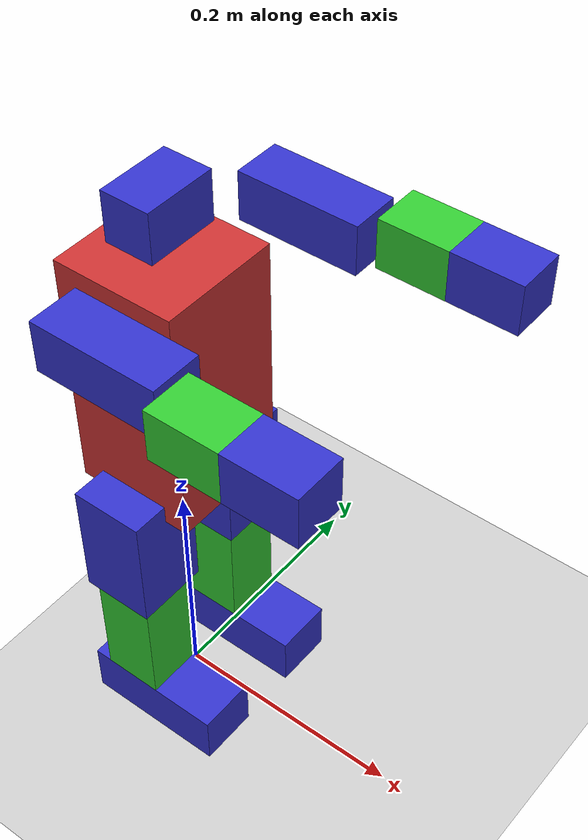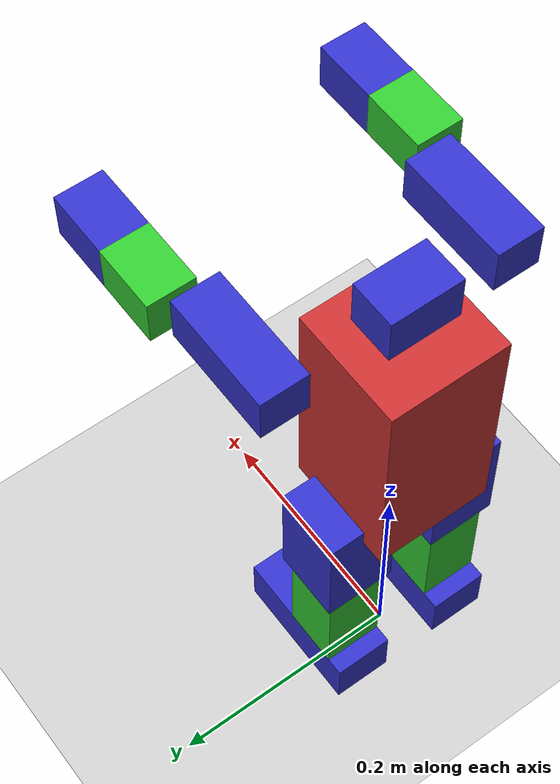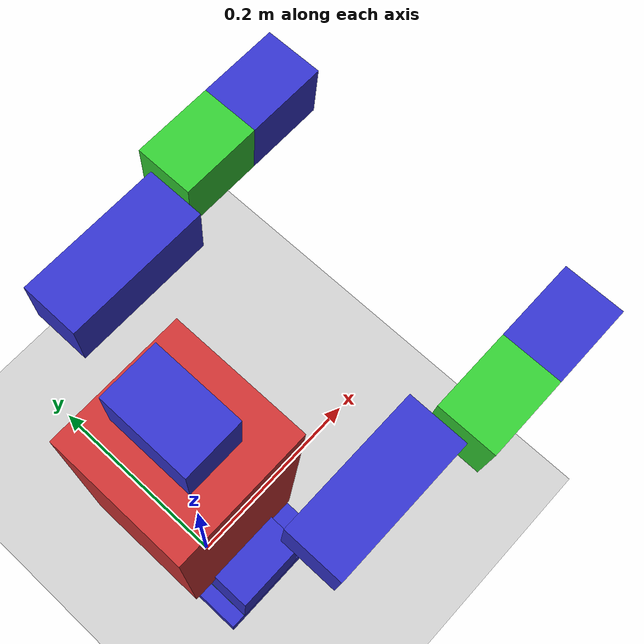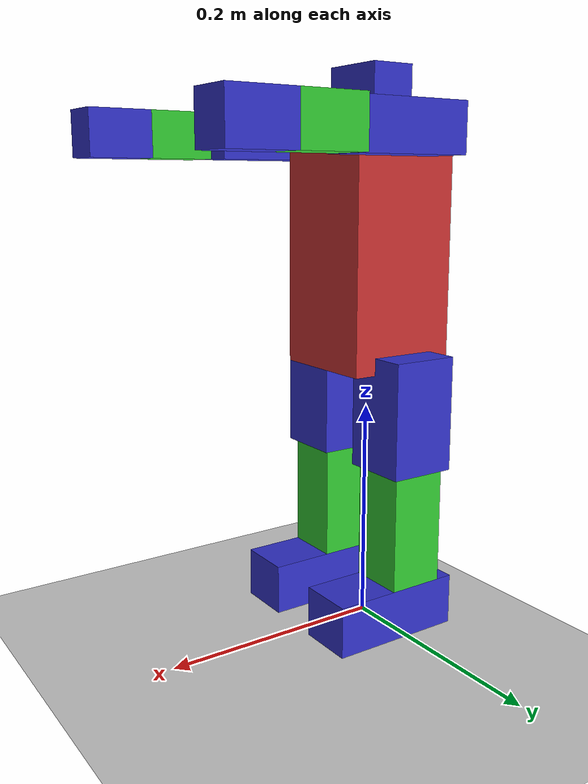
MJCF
<mujoco model="NaoH25V50">
  <option timestep="0.001"/>
  <default>
  <geom contype="0" conaffinity="0"
        solref="0.002 1"
        solimp="0.9 0.95 0.001"/>
  <default class="body_geom">
  <geom
    type="box"
    contype="0"
    conaffinity="0"
    friction="0.3 0.01 0.001"
    rgba="0.6 0.6 0.6 1"/>
  </default>

  <default class="foot_geom">
    <geom
      type="box"
      contype="1"
      conaffinity="1"
      friction="2.0 0.1 0.05"
      rgba="0.2 0.2 0.8 1"/>
  </default>

  <joint damping="0.0"/>
  </default>

  <compiler angle="radian"/>

  <worldbody>
  <camera name="main_cam" pos="3 0 1.5"/>

  <geom name="floor" type="plane" size="5 5 0.1" rgba="0.8 0.8 0.8 1" contype="1"
      conaffinity="1"/>
  <light pos="0 0 3"/>

  <body name="base" pos="0 0 0.34">
  <inertial
    pos="-0.00413 0 0.04342"
    mass="1.0496"
    diaginertia="0.005 0.005 0.005"/>
  <geom class="body_geom" size="0.05 0.05 0.1" rgba="0.8 0.2 0.2 1"/>
  <joint type="free" damping="0"/>
    <body name="Neck" pos="0 0 0.1265">
      <inertial pos="-1e-05 0 -0.02742" quat="0.70765 -0.00173495 0.00151894 0.706559" mass="0.07842" diaginertia="1.70396e-05 1.60324e-05 5.53348e-06"/>
      <joint name="HeadYaw" pos="0 0 0" axis="0 0 1" range="-2.08567 2.08567" actuatorfrcrange="-1.547 1.547"/>
      <body name="Head">
        <inertial pos="-0.00112 0 0.05258" quat="0.463877 0.585354 -0.492966 0.446277" mass="0.60533" diaginertia="0.000990592 0.000957952 0.000811033"/>
        <joint name="HeadPitch" pos="0 0 0" axis="0 1 0" range="-0.671952 0.514872" actuatorfrcrange="-1.532 1.532"/>
        <geom class="body_geom" size="0.02 0.03 0.02" pos="0 0 0.01" rgba="0.2 0.2 0.8 1"/>
      </body>
    </body>
    <body name="LPelvis" pos="0 0.05 -0.085">
      <inertial pos="-0.00781 -0.01114 0.02661" quat="0.232303 0.656505 0.182148 0.69416" mass="0.06981" diaginertia="5.16414e-05 4.58792e-05 2.32239e-05"/>
      <joint name="LHipYawPitch" pos="0 0 0" axis="0 0.707107 -0.707107" range="-1.14529 0.740718" actuatorfrcrange="-3.348 3.348"/>
      <body name="LHip">
        <inertial pos="-0.01549 0.00029 -0.00515" quat="0.453959 0.527953 0.574067 0.430853" mass="0.14053" diaginertia="6.08587e-05 5.59269e-05 2.22526e-05"/>
        <joint name="LHipRoll" pos="0 0 0" axis="1 0 0" range="-0.379435 0.79046" actuatorfrcrange="-3.348 3.348"/>
        <body name="LThigh">
          <inertial pos="0.00138 0.00221 -0.05373" quat="0.992078 -0.0228023 -0.123519 -0.00190301" mass="0.38968" diaginertia="0.000524114 0.000465732 0.000286453"/>
          <joint name="LHipPitch" pos="0 0 0" axis="0 1 0" range="-1.53589 0.48398" actuatorfrcrange="-3.023 3.023"/>
          <geom class="body_geom" size="0.03 0.03 0.05" pos="0 0 -0.05" rgba="0.2 0.2 0.8 1"/>
          <body name="LTibia" pos="0 0 -0.1">
            <inertial pos="0.00453 0.00225 -0.04936" quat="0.997907 0.0169027 0.0579417 0.0232071" mass="0.30142" diaginertia="0.000449928 0.000388139 0.000181704"/>
            <joint name="LKneePitch" pos="0 0 0" axis="0 1 0" range="-0.0923279 2.11255" actuatorfrcrange="-3.023 3.023"/>
            <geom class="body_geom" size="0.025 0.025 0.05145" pos="0 0 -0.05145" rgba="0.2 0.8 0.2 1"/>
            <body name="LAnklePitch" pos="0 0 -0.1029">
              <inertial pos="0.00045 0.00029 0.00685" quat="0.447256 0.548803 0.537287 0.458368" mass="0.13416" diaginertia="6.79494e-05 5.56016e-05 3.14223e-05"/>
              <joint name="LAnklePitch" pos="0 0 0" axis="0 1 0" range="-1.18944 0.922581" actuatorfrcrange="-3.023 3.023"/>
              <body name="l_ankle">
                <inertial pos="0.0254198 0.00330005 -0.0323906" quat="0.0134363 0.704739 -0.00974782 0.709273" mass="0.171848" diaginertia="0.000412891 0.000353334 8.70025e-05"/>
                <joint name="LAnkleRoll" pos="0 0 0" axis="1 0 0" range="-0.397761 0.768992" actuatorfrcrange="-3.348 3.348"/>
                <geom class="foot_geom" type="box" size="0.06 0.025 0.02259" pos="0.02 0 -0.02259" rgba="0.2 0.2 0.8 1"/>
              </body>
            </body>
          </body>
        </body>
      </body>
    </body>
    <body name="RPelvis" pos="0 -0.05 -0.085">
      <inertial pos="-0.00781 0.01114 0.02661" quat="-0.286295 0.637526 -0.200888 0.686469" mass="0.06981" diaginertia="6.0003e-05 4.60859e-05 3.15895e-05"/>
      <joint name="RHipYawPitch" pos="0 0 0" axis="0 0.707107 0.707107" range="-1.14529 0.740718" actuatorfrcrange="-3.348 3.348"/>
      <body name="RHip">
        <inertial pos="-0.01549 -0.00029 -0.00515" quat="0.431269 0.573083 0.528698 0.453941" mass="0.14053" diaginertia="6.08554e-05 5.59208e-05 2.2268e-05"/>
        <joint name="RHipRoll" pos="0 0 0" axis="1 0 0" range="-0.79046 0.379435" actuatorfrcrange="-3.348 3.348"/>
        <body name="RThigh">
          <inertial pos="0.00138 -0.00221 -0.05373" quat="0.99203 0.0205489 -0.124311 0.000726212" mass="0.38968" diaginertia="0.000525121 0.000466802 0.000286518"/>
          <joint name="RHipPitch" pos="0 0 0" axis="0 1 0" range="-1.53589 0.48398" actuatorfrcrange="-3.0226 3.0226"/>
          <geom class="body_geom" size="0.03 0.03 0.05" pos="0 0 -0.05" rgba="0.2 0.2 0.8 1"/>
          <body name="RTibia" pos="0 0 -0.1">
            <inertial pos="0.00453 -0.00225 -0.04936" quat="0.99698 -0.0149083 0.0724691 -0.0235809" mass="0.30142" diaginertia="0.000452851 0.000387699 0.000177824"/>
            <joint name="RKneePitch" pos="0 0 0" axis="0 1 0" range="-0.0923279 2.11255" actuatorfrcrange="-3.0226 3.0226"/>
            <geom class="body_geom" size="0.025 0.025 0.05145" pos="0 0 -0.05145" rgba="0.2 0.8 0.2 1"/>
            <body name="RAnklePitch" pos="0 0 -0.1029">
              <inertial pos="0.00045 -0.00029 0.00685" quat="0.458219 0.537985 0.54818 0.447332" mass="0.13416" diaginertia="6.79942e-05 5.56532e-05 3.14175e-05"/>
              <joint name="RAnklePitch" pos="0 0 0" axis="0 1 0" range="-1.1863 0.932006" actuatorfrcrange="-3.0226 3.0226"/>
              <body name="r_ankle">
                <inertial pos="0.0254198 -0.00330005 -0.0323906" quat="-0.0138336 0.704473 0.00894574 0.70954" mass="0.171848" diaginertia="0.000412175 0.000352454 8.68701e-05"/>
                <joint name="RAnkleRoll" pos="0 0 0" axis="1 0 0" range="-0.768992 0.397761" actuatorfrcrange="-3.348 3.348"/>
                <geom class="foot_geom" type="box" size="0.06 0.025 0.02259" pos="0.02 0 -0.02259" rgba="0.2 0.2 0.8 1"/>
              </body>
            </body>
          </body>
        </body>
      </body>
    </body>
    <body name="LShoulder" pos="0 0.098 0.1">
      <inertial pos="-0.00165 -0.02663 0.00014" quat="0.353499 0.572853 -0.442525 0.592494" mass="0.09304" diaginertia="2.02186e-05 1.91002e-05 1.30704e-05"/>
      <joint name="LShoulderPitch" pos="0 0 0" axis="0 1 0" range="-2.08567 2.08567" actuatorfrcrange="-1.329 1.329"/>
      <body name="LBicep">
        <inertial pos="0.02455 0.00563 0.0033" quat="0.467645 0.46185 0.492756 0.570257" mass="0.15777" diaginertia="0.00027823 0.000242894 8.25818e-05"/>
        <joint name="LShoulderRoll" pos="0 0 0" axis="0 0 1" range="-0.314159 1.32645" actuatorfrcrange="-1.7835 1.7835"/>
        <geom class="body_geom" size="0.05 0.02 0.02" pos="0.05 0 0" rgba="0.2 0.2 0.8 1"/>
        <body name="LElbow" pos="0.105 0.015 0">
          <inertial pos="-0.02744 0 -0.00014" quat="-0.000545392 0.711779 -0.000696018 0.702403" mass="0.06483" diaginertia="2.76333e-05 2.66179e-05 5.592e-06"/>
          <joint name="LElbowYaw" pos="0 0 0" axis="1 0 0" range="-2.08567 2.08567" actuatorfrcrange="-1.547 1.547"/>
          <body name="LForeArm">
            <inertial pos="0.02556 0.00281 0.00076" quat="0.481839 0.619088 0.422287 0.454131" mass="0.07761" diaginertia="3.9183e-05 3.6083e-05 2.37632e-05"/>
            <joint name="LElbowRoll" pos="0 0 0" axis="0 0 1" range="-1.54462 -0.0349066" actuatorfrcrange="-1.532 1.532"/>
            <geom class="body_geom" size="0.028 0.02 0.02" pos="0.028 0 0" rgba="0.2 0.8 0.2 1"/>
            <body name="l_wrist" pos="0.05595 0 0">
              <inertial pos="0.03434 -0.00088 0.00308" quat="0.346526 0.607704 0.329318 0.634165" mass="0.18533" diaginertia="0.000137482 0.000131631 6.85194e-05"/>
              <joint name="LWristYaw" pos="0 0 0" axis="1 0 0" range="-1.82387 1.82387" actuatorfrcrange="-0.4075 0.4075"/>
              <geom class="body_geom" size="0.028 0.02 0.02" pos="0.028 0 0" rgba="0.2 0.2 0.8 1"/>
            </body>
          </body>
        </body>
      </body>
    </body>
    <body name="RShoulder" pos="0 -0.098 0.1">
      <inertial pos="-0.00165 0.02663 0.00014" quat="0.572853 0.353499 -0.592494 0.442525" mass="0.09304" diaginertia="2.02186e-05 1.91002e-05 1.30704e-05"/>
      <joint name="RShoulderPitch" pos="0 0 0" axis="0 1 0" range="-2.08567 2.08567" actuatorfrcrange="-1.329 1.329"/>
      <body name="RBicep">
        <inertial pos="0.02455 -0.00563 0.0033" quat="0.556969 0.570609 0.359404 0.484788" mass="0.15777" diaginertia="0.000287934 0.00025515 8.56154e-05"/>
        <joint name="RShoulderRoll" pos="0 0 0" axis="0 0 1" range="-1.32645 0.314159" actuatorfrcrange="-1.783 1.783"/>
        <geom class="body_geom" size="0.05 0.02 0.02" pos="0.05 0 0" rgba="0.2 0.2 0.8 1"/>
        <body name="RElbow" pos="0.105 -0.015 0">
          <inertial pos="-0.02744 0 -0.00014" quat="-0.000545392 0.711779 -0.000696018 0.702403" mass="0.06483" diaginertia="2.76333e-05 2.66179e-05 5.592e-06"/>
          <joint name="RElbowYaw" pos="0 0 0" axis="1 0 0" range="-2.08567 2.08567" actuatorfrcrange="-1.547 1.547"/>
          <body name="RForeArm">
            <inertial pos="0.02556 -0.00281 0.00076" quat="0.453039 0.428011 0.593606 0.509111" mass="0.07761" diaginertia="3.92326e-05 3.59586e-05 2.39457e-05"/>
            <joint name="RElbowRoll" pos="0 0 0" axis="0 0 1" range="0.0349066 1.54462" actuatorfrcrange="-1.532 1.532"/>
            <geom class="body_geom" size="0.028 0.02 0.02" pos="0.028 0 0" rgba="0.2 0.8 0.2 1"/>
            <body name="r_wrist" pos="0.05595 0 0">
              <inertial pos="0.03434 0.00088 0.00308" quat="0.422432 0.617987 0.303847 0.589339" mass="0.18533" diaginertia="0.000139307 0.000131711 6.66137e-05"/>
              <joint name="RWristYaw" pos="0 0 0" axis="1 0 0" range="-1.82387 1.82387" actuatorfrcrange="-0.4075 0.4075"/>
              <geom class="body_geom" size="0.028 0.02 0.02" pos="0.028 0 0" rgba="0.2 0.2 0.8 1"/>
            </body>
          </body>
        </body>
      </body>
    </body>
  </body>
  </worldbody>

  <actuator>
  <motor name="HeadYaw" joint="HeadYaw" gear="1"/>
  <motor name="HeadPitch" joint="HeadPitch" gear="1"/>

  <motor name="LHipYawPitch"     joint="LHipYawPitch"     gear="1"/>
  <motor name="LHipRoll"    joint="LHipRoll"    gear="1"/>
  <motor name="LHipPitch"    joint="LHipPitch"    gear="1"/>
  <motor name="LKneePitch"   joint="LKneePitch"   gear="1"/>
  <motor name="LAnklePitch"  joint="LAnklePitch"  gear="1"/>
  <motor name="LAnkleRoll"   joint="LAnkleRoll"   gear="1"/>

  <motor name="RHipYawPitch"     joint="RHipYawPitch"     gear="1"/>
  <motor name="RHipRoll"    joint="RHipRoll"    gear="1"/>
  <motor name="RHipPitch"    joint="RHipPitch"    gear="1"/>
  <motor name="RKneePitch"   joint="RKneePitch"   gear="1"/>
  <motor name="RAnklePitch"  joint="RAnklePitch"  gear="1"/>
  <motor name="RAnkleRoll"   joint="RAnkleRoll"   gear="1"/>

  <motor name="LShoulderPitch"   joint="LShoulderPitch"   gear="1"/>
  <motor name="LShoulderRoll"   joint="LShoulderRoll"   gear="1"/>
  <motor name="LElbowYaw"   joint="LElbowYaw"   gear="1"/>
  <motor name="LElbowRoll"   joint="LElbowRoll"   gear="1"/>
  <motor name="LWristYaw"   joint="LWristYaw"   gear="1"/>

  <motor name="RShoulderPitch"   joint="RShoulderPitch"   gear="1"/>
  <motor name="RShoulderRoll"   joint="RShoulderRoll"   gear="1"/>
  <motor name="RElbowYaw"   joint="RElbowYaw"   gear="1"/>
  <motor name="RElbowRoll"   joint="RElbowRoll"   gear="1"/>
  <motor name="RWristYaw"   joint="RWristYaw"   gear="1"/>
  </actuator>
</mujoco>
